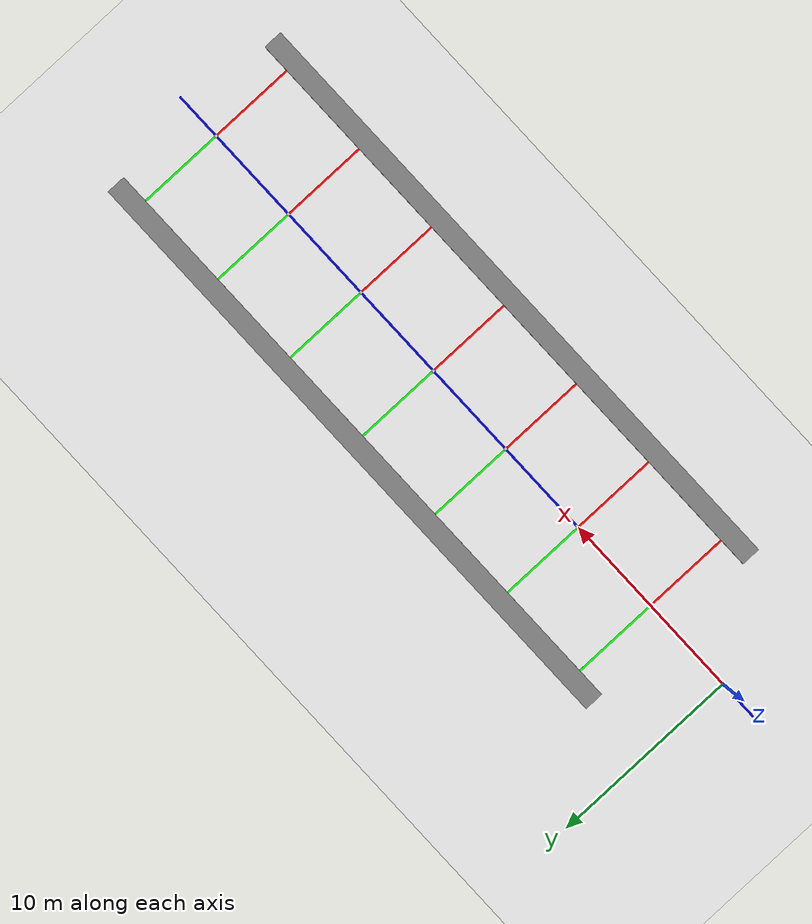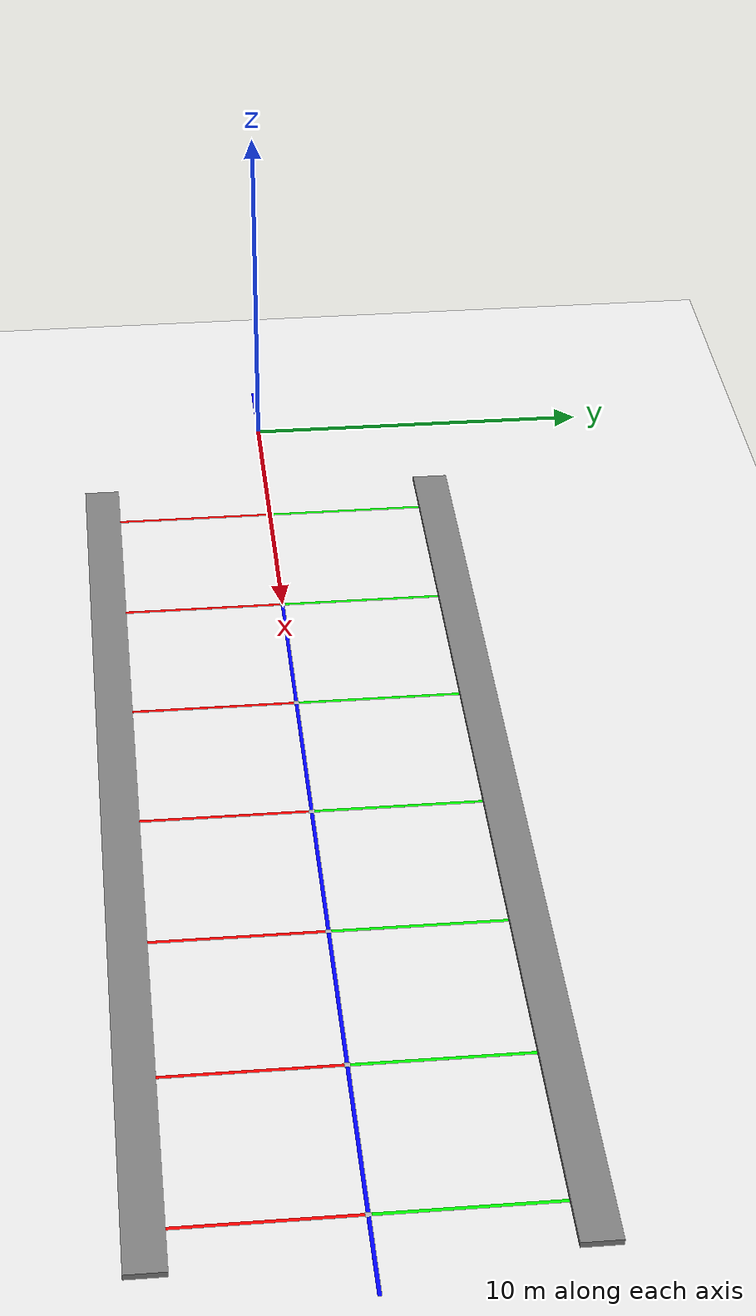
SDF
<?xml version="1.0"?>
<sdf version="1.6">
  <world name="blue_line_world">

    <!-- Physics -->
    <physics name="default_physics" default="0" type="ode">
      <max_step_size>0.001</max_step_size>
      <real_time_factor>1</real_time_factor>
      <real_time_update_rate>1000</real_time_update_rate>
    </physics>

    <!-- Lighting -->
    <include>
      <uri>model://sun</uri>
    </include>

    <!-- Ground Plane -->
    <model name="ground_plane">
      <static>true</static>
      <link name="link">
        <collision name="collision">
          <geometry>
            <plane>
              <normal>0 0 1</normal>
              <size>100 100</size>
            </plane>
          </geometry>
          <surface>
            <friction>
              <ode>
                <mu>100</mu>
                <mu2>50</mu2>
              </ode>
            </friction>
          </surface>
        </collision>
        <visual name="visual">
          <cast_shadows>false</cast_shadows>
          <geometry>
            <plane>
              <normal>0 0 1</normal>
              <size>100 100</size>
            </plane>
          </geometry>
          <material>
            <script>
              <uri>file://media/materials/scripts/gazebo.material</uri>
              <name>Gazebo/White</name>
            </script>
          </material>
        </visual>
      </link>
    </model>

    <!-- Blue Line Track - Straight -->
    <model name="blue_line_straight">
      <static>true</static>
      <link name="link">
        <pose>17.5 0 0.001 0 0 0</pose>
        <visual name="visual">
          <geometry>
            <box>
              <size>40 0.1 0.001</size>
            </box>
          </geometry>
          <material>
            <ambient>0 0 1 1</ambient>
            <diffuse>0 0 1 1</diffuse>
            <specular>0.1 0.1 0.3 1</specular>
            <emissive>0 0 0.5 1</emissive>
          </material>
        </visual>
      </link>
    </model>

    <!-- delivery_zone_left -->
    <model name="delivery_zone_left">
      <static>true</static>
      <link name="link">
        <pose>20 5 0.1 0 0 0</pose>
        <collision name="collision">
          <geometry>
            <box>
              <size>33 1 0.15</size>
            </box>
          </geometry>
        </collision>
        <visual name="visual">
          <geometry>
            <box>
              <size>33 1 0.15</size>
            </box>
          </geometry>
          <material>
            <ambient>0.5 0.5 0.5 1</ambient>
            <diffuse>0.5 0.5 0.5 1</diffuse>
            <specular>0.2 0.2 0.2 1</specular>
          </material>
        </visual>
      </link>
    </model>
    <!-- delivery_zone_right -->
    <model name="delivery_zone_right">
      <static>true</static>
      <link name="link">
        <pose>20 -5 0.1 0 0 0</pose>
        <collision name="collision">
          <geometry>
            <box>
              <size>33 1 0.15</size>
            </box>
          </geometry>
        </collision>
        <visual name="visual">
          <geometry>
            <box>
              <size>33 1 0.15</size>
            </box>
          </geometry>
          <material>
            <ambient>0.5 0.5 0.5 1</ambient>
            <diffuse>0.5 0.5 0.5 1</diffuse>
            <specular>0.2 0.2 0.2 1</specular>
          </material>
        </visual>
      </link>
    </model>

    <!-- Red_1-->
    <model name="Red_1">
      <static>true</static>
      <link name="link">
        <pose>5 -2.5 0.001 0 0 1.5708</pose>
        <visual name="visual">
          <geometry>
            <box>
              <size>5 0.1 0.001</size>
            </box>
          </geometry>
          <material>
            <ambient>1 0 0 1</ambient>
            <diffuse>1 0 0 1</diffuse>
            <specular>0.3 0.1 0.1 1</specular>
            <emissive>0.5 0 0 1</emissive>
          </material>
        </visual>
      </link>
    </model>

    <!-- Red_2-->
    <model name="Red_2">
      <static>true</static>
      <link name="link">
        <pose>10 -2.5 0.001 0 0 1.5708</pose>
        <visual name="visual">
          <geometry>
            <box>
              <size>5 0.1 0.001</size>
            </box>
          </geometry>
          <material>
            <ambient>1 0 0 1</ambient>
            <diffuse>1 0 0 1</diffuse>
            <specular>0.3 0.1 0.1 1</specular>
            <emissive>0.5 0 0 1</emissive>
          </material>
        </visual>
      </link>
    </model>

    <!-- Red_3-->
    <model name="Red_3">
      <static>true</static>
      <link name="link">
        <pose>15 -2.5 0.001 0 0 1.5708</pose>
        <visual name="visual">
          <geometry>
            <box>
              <size>5 0.1 0.001</size>
            </box>
          </geometry>
          <material>
            <ambient>1 0 0 1</ambient>
            <diffuse>1 0 0 1</diffuse>
            <specular>0.3 0.1 0.1 1</specular>
            <emissive>0.5 0 0 1</emissive>
          </material>
        </visual>
      </link>
    </model>

    <!-- Red_4-->
    <model name="Red_4">
      <static>true</static>
      <link name="link">
        <pose>20 -2.5 0.001 0 0 1.5708</pose>
        <visual name="visual">
          <geometry>
            <box>
              <size>5 0.1 0.001</size>
            </box>
          </geometry>
          <material>
            <ambient>1 0 0 1</ambient>
            <diffuse>1 0 0 1</diffuse>
            <specular>0.3 0.1 0.1 1</specular>
            <emissive>0.5 0 0 1</emissive>
          </material>
        </visual>
      </link>
    </model>

    <!-- Red_5-->
    <model name="Red_5">
      <static>true</static>
      <link name="link">
        <pose>25 -2.5 0.001 0 0 1.5708</pose>
        <visual name="visual">
          <geometry>
            <box>
              <size>5 0.1 0.001</size>
            </box>
          </geometry>
          <material>
            <ambient>1 0 0 1</ambient>
            <diffuse>1 0 0 1</diffuse>
            <specular>0.3 0.1 0.1 1</specular>
            <emissive>0.5 0 0 1</emissive>
          </material>
        </visual>
      </link>
    </model>

    <!-- Red_6-->
    <model name="Red_6">
      <static>true</static>
      <link name="link">
        <pose>30 -2.5 0.001 0 0 1.5708</pose>
        <visual name="visual">
          <geometry>
            <box>
              <size>5 0.1 0.001</size>
            </box>
          </geometry>
          <material>
            <ambient>1 0 0 1</ambient>
            <diffuse>1 0 0 1</diffuse>
            <specular>0.3 0.1 0.1 1</specular>
            <emissive>0.5 0 0 1</emissive>
          </material>
        </visual>
      </link>
    </model>

    <!-- Red_7-->
    <model name="Red_7">
      <static>true</static>
      <link name="link">
        <pose>35 -2.5 0.001 0 0 1.5708</pose>
        <visual name="visual">
          <geometry>
            <box>
              <size>5 0.1 0.001</size>
            </box>
          </geometry>
          <material>
            <ambient>1 0 0 1</ambient>
            <diffuse>1 0 0 1</diffuse>
            <specular>0.3 0.1 0.1 1</specular>
            <emissive>0.5 0 0 1</emissive>
          </material>
        </visual>
      </link>
    </model>

    <!-- Green_1-->
    <model name="Green_1">
      <static>true</static>
      <link name="link">
        <pose>5 2.5 0.001 0 0 1.5708</pose>
        <visual name="visual">
          <geometry>
            <box>
              <size>5 0.1 0.001</size>
            </box>
          </geometry>
          <material>
            <ambient>0 1 0 1</ambient>
            <diffuse>0 1 0 1</diffuse>
            <specular>0.1 0.3 0.1 1</specular>
            <emissive>0 0.5 0 1</emissive>
          </material>
        </visual>
      </link>
    </model>

    <!-- Green_2-->
    <model name="Green_2">
      <static>true</static>
      <link name="link">
        <pose>10 2.5 0.001 0 0 1.5708</pose>
        <visual name="visual">
          <geometry>
            <box>
              <size>5 0.1 0.001</size>
            </box>
          </geometry>
          <material>
            <ambient>1 0 0 1</ambient>
            <diffuse>0 1 0 1</diffuse>
            <specular>0.1 0.3 0.1 1</specular>
            <emissive>0 0.5 0 1</emissive>
          </material>
        </visual>
      </link>
    </model>

    <!-- Green_3-->
    <model name="Green_3">
      <static>true</static>
      <link name="link">
        <pose>15 2.5 0.001 0 0 1.5708</pose>
        <visual name="visual">
          <geometry>
            <box>
              <size>5 0.1 0.001</size>
            </box>
          </geometry>
          <material>
            <ambient>0 1 0 1</ambient>
            <diffuse>0 1 0 1</diffuse>
            <specular>0.1 0.3 0.1 1</specular>
            <emissive>0 0.5 0 1</emissive>
          </material>
        </visual>
      </link>
    </model>

    <!-- Green_4-->
    <model name="Green_4">
      <static>true</static>
      <link name="link">
        <pose>20 2.5 0.001 0 0 1.5708</pose>
        <visual name="visual">
          <geometry>
            <box>
              <size>5 0.1 0.001</size>
            </box>
          </geometry>
          <material>
            <ambient>0 1 0 1</ambient>
            <diffuse>0 1 0 1</diffuse>
            <specular>0.1 0.3 0.1 1</specular>
            <emissive>0 0.5 0 1</emissive>
          </material>
        </visual>
      </link>
    </model>

    <!-- Green_5-->
    <model name="Green_5">
      <static>true</static>
      <link name="link">
        <pose>25 2.5 0.001 0 0 1.5708</pose>
        <visual name="visual">
          <geometry>
            <box>
              <size>5 0.1 0.001</size>
            </box>
          </geometry>
          <material>
            <ambient>0 1 0 1</ambient>
            <diffuse>0 1 0 1</diffuse>
            <specular>0.1 0.3 0.1 1</specular>
            <emissive>0 0.5 0 1</emissive>
          </material>
        </visual>
      </link>
    </model>

    <!-- Green_6-->
    <model name="Green_6">
      <static>true</static>
      <link name="link">
        <pose>30 2.5 0.001 0 0 1.5708</pose>
        <visual name="visual">
          <geometry>
            <box>
              <size>5 0.1 0.001</size>
            </box>
          </geometry>
          <material>
            <ambient>0 1 0 1</ambient>
            <diffuse>0 1 0 1</diffuse>
            <specular>0.1 0.3 0.1 1</specular>
            <emissive>0 0.5 0 1</emissive>
          </material>
        </visual>
      </link>
    </model>

    <!-- Green_7-->
    <model name="Green_7">
      <static>true</static>
      <link name="link">
        <pose>35 2.5 0.001 0 0 1.5708</pose>
        <visual name="visual">
          <geometry>
            <box>
              <size>5 0.1 0.001</size>
            </box>
          </geometry>
          <material>
            <ambient>0 1 0 1</ambient>
            <diffuse>0 1 0 1</diffuse>
            <specular>0.1 0.3 0.1 1</specular>
            <emissive>0 0.5 0 1</emissive>
          </material>
        </visual>
      </link>
    </model>

    <!-- ArUco Markers along the track -->
    <!-- ArUco 0 - at the very start (HOME) -->
    <model name="aruco_0">
      <static>true</static>
      <link name="link">
        <pose>0 0 0.002 0 0 0</pose>
        <visual name="visual">
          <geometry>
            <box>
              <size>0.15 0.15 0.001</size>
            </box>
          </geometry>
          <material>
            <script>
              <uri>model://aruco_0/materials/scripts</uri>
              <uri>model://aruco_0/materials/textures</uri>
              <name>aruco_0</name>
            </script>
          </material>
        </visual>
      </link>
    </model>

    <!-- ArUco 1 - at the start -->
    <model name="aruco_1">
      <static>true</static>
      <link name="link">
        <pose>5 0 0.002 0 0 0</pose>
        <visual name="visual">
          <geometry>
            <box>
              <size>0.15 0.15 0.001</size>
            </box>
          </geometry>
          <material>
            <script>
              <uri>model://aruco_1/materials/scripts</uri>
              <uri>model://aruco_1/materials/textures</uri>
              <name>aruco_1</name>
            </script>
          </material>
        </visual>
      </link>
    </model>

    <!-- ArUco 2 - before first curve -->
    <model name="aruco_2">
      <static>true</static>
      <link name="link">
        <pose>10 0 0.002 0 0 0</pose>
        <visual name="visual">
          <geometry>
            <box>
              <size>0.15 0.15 0.001</size>
            </box>
          </geometry>
          <material>
            <script>
              <uri>model://aruco_2/materials/scripts</uri>
              <uri>model://aruco_2/materials/textures</uri>
              <name>aruco_2</name>
            </script>
          </material>
        </visual>
      </link>
    </model>

    <!-- ArUco 3 - on top straight -->
    <model name="aruco_3">
      <static>true</static>
      <link name="link">
        <pose>15 0 0.002 0 0 0</pose>
        <visual name="visual">
          <geometry>
            <box>
              <size>0.15 0.15 0.001</size>
            </box>
          </geometry>
          <material>
            <script>
              <uri>model://aruco_3/materials/scripts</uri>
              <uri>model://aruco_3/materials/textures</uri>
              <name>aruco_3</name>
            </script>
          </material>
        </visual>
      </link>
    </model>

    <!-- ArUco 4 - on back straight -->
    <model name="aruco_4">
      <static>true</static>
      <link name="link">
        <pose>20 0 0.002 0 0 3.14159</pose>
        <visual name="visual">
          <geometry>
            <box>
              <size>0.15 0.15 0.001</size>
            </box>
          </geometry>
          <material>
            <script>
              <uri>model://aruco_4/materials/scripts</uri>
              <uri>model://aruco_4/materials/textures</uri>
              <name>aruco_4</name>
            </script>
          </material>
        </visual>
      </link>
    </model>

    <!-- ArUco 5 - final straight -->
    <model name="aruco_5">
      <static>true</static>
      <link name="link">
        <pose>25 0 0.002 0 0 3.14159</pose>
        <visual name="visual">
          <geometry>
            <box>
              <size>0.15 0.15 0.001</size>
            </box>
          </geometry>
          <material>
            <script>
              <uri>model://aruco_5/materials/scripts</uri>
              <uri>model://aruco_5/materials/textures</uri>
              <name>aruco_5</name>
            </script>
          </material>
        </visual>
      </link>
    </model>

    <!-- ArUco 6 - near the end -->
    <model name="aruco_6">
      <static>true</static>
      <link name="link">
        <pose>30 0 0.002 0 0 3.14159</pose>
        <visual name="visual">
          <geometry>
            <box>
              <size>0.15 0.15 0.001</size>
            </box>
          </geometry>
          <material>
            <script>
              <uri>model://aruco_6/materials/scripts</uri>
              <uri>model://aruco_6/materials/textures</uri>
              <name>aruco_6</name>
            </script>
          </material>
        </visual>
      </link>
    </model>

    <!-- ArUco 7 - at the end (DESTINATION) -->
    <model name="aruco_7">
      <static>true</static>
      <link name="link">
        <pose>35 0 0.002 0 0 3.14159</pose>
        <visual name="visual">
          <geometry>
            <box>
              <size>0.15 0.15 0.001</size>
            </box>
          </geometry>
          <material>
            <script>
              <uri>model://aruco_7/materials/scripts</uri>
              <uri>model://aruco_7/materials/textures</uri>
              <name>aruco_7</name>
            </script>
          </material>
        </visual>
      </link>
    </model>

    <!-- Test Cube - Positioned above robot for pusher testing -->
    <model name="test_cube_1">
      <pose>0 0 0.45 0 0 0</pose>
      <include>
        <uri>model://test_cube</uri>
      </include>
    </model>

    <!-- Scene -->
    <scene>
      <ambient>0.4 0.4 0.4 1</ambient>
      <background>0.7 0.7 0.7 1</background>
      <shadows>true</shadows>
    </scene>

    <!-- GUI -->
    <gui fullscreen='0'>
      <camera name='user_camera'>
        <pose>0 -5 8 0 0.6 1.57</pose>
        <view_controller>orbit</view_controller>
      </camera>
    </gui>

  </world>
</sdf>

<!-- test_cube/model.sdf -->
<sdf version="1.6">
  <model name="test_cube">
    <static>false</static>
    <link name="link">
      <pose>0 0 0 0 0 0</pose>
      <inertial>
        <mass>0.5</mass>
        <inertia>
          <ixx>0.00208</ixx>
          <ixy>0</ixy>
          <ixz>0</ixz>
          <iyy>0.00208</iyy>
          <iyz>0</iyz>
          <izz>0.00208</izz>
        </inertia>
      </inertial>
      <collision name="collision">
        <geometry>
          <box>
            <size>0.2 0.2 0.2</size>
          </box>
        </geometry>
        <surface>
          <friction>
            <ode>
              <mu>0.8</mu>
              <mu2>0.8</mu2>
            </ode>
          </friction>
          <contact>
            <ode>
              <kp>1000000.0</kp>
              <kd>100.0</kd>
              <min_depth>0.001</min_depth>
            </ode>
          </contact>
        </surface>
      </collision>
      <visual name="visual">
        <geometry>
          <box>
            <size>0.2 0.2 0.2</size>
          </box>
        </geometry>
        <material>
          <ambient>0.8 0.2 0.2 1</ambient>
          <diffuse>0.8 0.2 0.2 1</diffuse>
          <specular>0.1 0.1 0.1 1</specular>
        </material>
      </visual>
    </link>
  </model>
</sdf>
